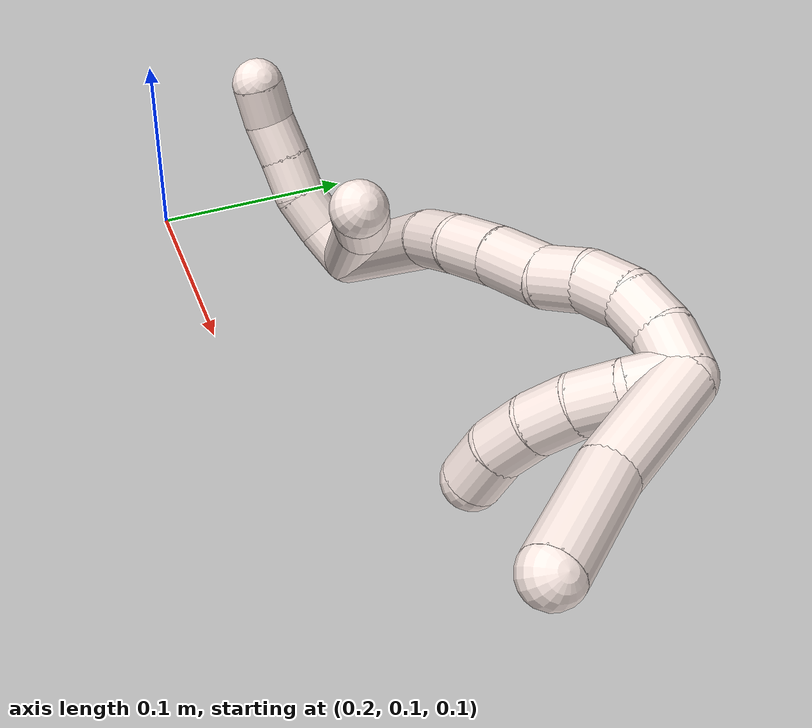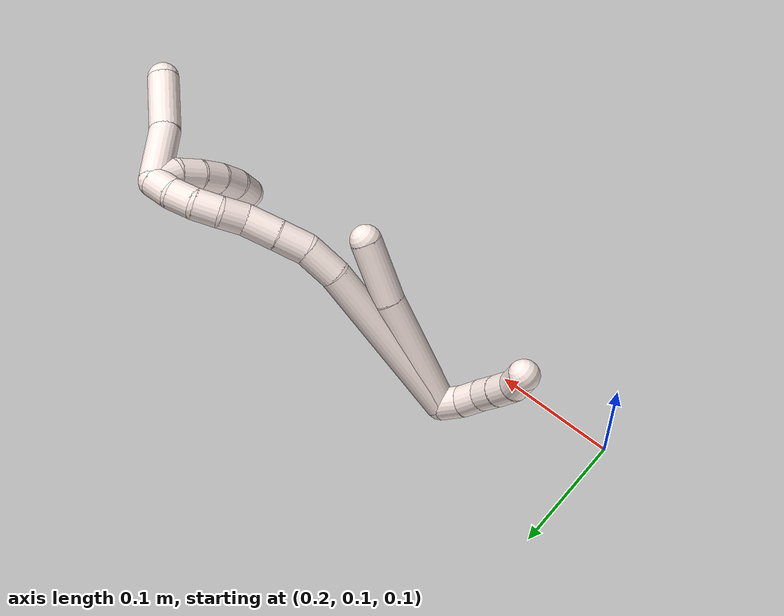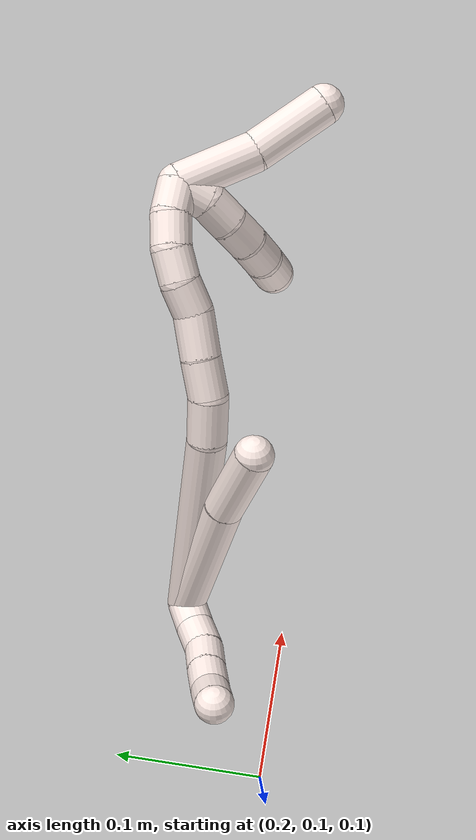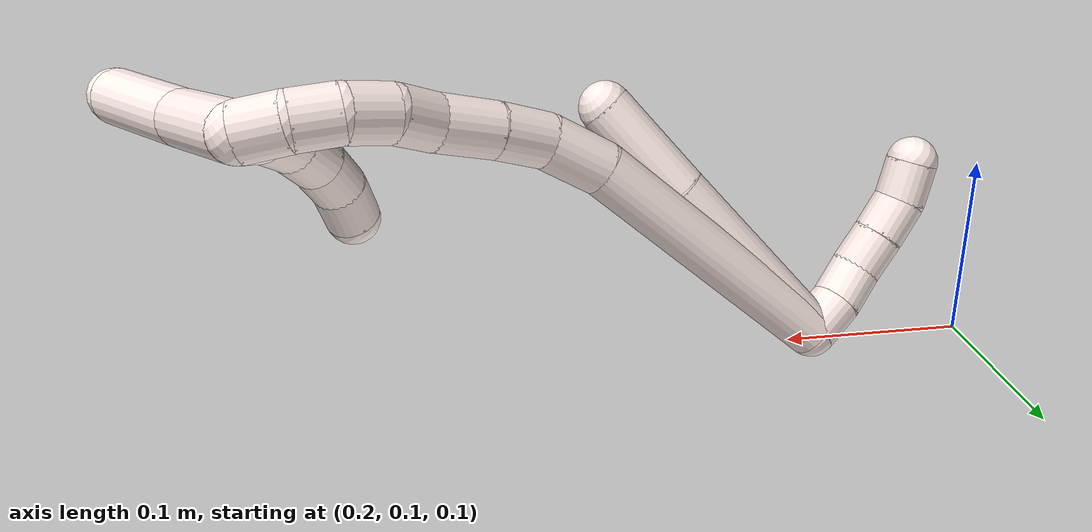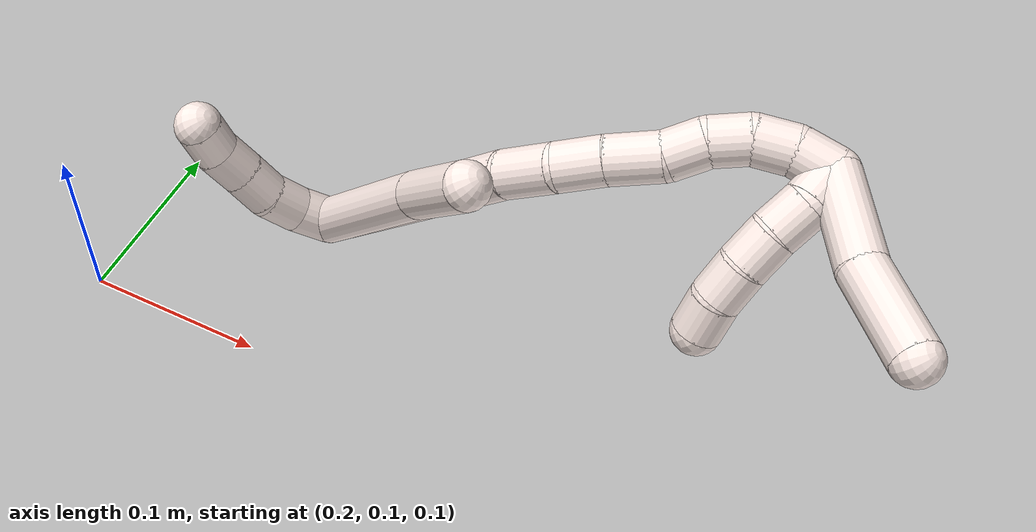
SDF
<sdf version="1.7">
 <world name="default">
  <model name="11">
   <static>0</static>
   <link name="11">
    <collision name="collision-cylinder-e_1_2_8">
     <pose>0.009742 -0.009693 0.04705 0.203165 0.200076 0.020462</pose>
     <geometry><cylinder><radius>0.0125</radius><length>0.098031</length></cylinder></geometry>
     <surface>
      <friction><ode><mu>1.16</mu><mu2>1.16</mu2><slip1>0</slip1><slip2>0</slip2></ode></friction>
      <contact><ode><kp>1e+06</kp><kd>1</kd><max_vel>0</max_vel><min_depth>0.001</min_depth></ode></contact>
     </surface>
    </collision>
    <visual name="visual-cylinder-e_1_2_8">
     <pose>0.009742 -0.009693 0.04705 0.203165 0.200076 0.020462</pose>
     <geometry><cylinder><radius>0.0125</radius><length>0.098031</length></cylinder></geometry>
     <material><ambient>1 0.933333 0.909804 1</ambient></material>
    </visual>
    <collision name="collision-cylinder-e_2_8_6">
     <pose>0.02611 -0.0265 0.118196 0.287123 0.257893 0.037484</pose>
     <geometry><cylinder><radius>0.0125</radius><length>0.051969</length></cylinder></geometry>
     <surface>
      <friction><ode><mu>1.16</mu><mu2>1.16</mu2><slip1>0</slip1><slip2>0</slip2></ode></friction>
      <contact><ode><kp>1e+06</kp><kd>1</kd><max_vel>0</max_vel><min_depth>0.001</min_depth></ode></contact>
     </surface>
    </collision>
    <visual name="visual-cylinder-e_2_8_6">
     <pose>0.02611 -0.0265 0.118196 0.287123 0.257893 0.037484</pose>
     <geometry><cylinder><radius>0.0125</radius><length>0.051969</length></cylinder></geometry>
     <material><ambient>1 0.933333 0.909804 1</ambient></material>
    </visual>
    <collision name="collision-cylinder-e_1_2_9">
     <pose>-0.004067 -0.009032 -0.001369 1.72126 -0.41887 -0.484694</pose>
     <geometry><cylinder><radius>0.0125</radius><length>0.02</length></cylinder></geometry>
     <surface>
      <friction><ode><mu>1.16</mu><mu2>1.16</mu2><slip1>0</slip1><slip2>0</slip2></ode></friction>
      <contact><ode><kp>1e+06</kp><kd>1</kd><max_vel>0</max_vel><min_depth>0.001</min_depth></ode></contact>
     </surface>
    </collision>
    <visual name="visual-cylinder-e_1_2_9">
     <pose>-0.004067 -0.009032 -0.001369 1.72126 -0.41887 -0.484694</pose>
     <geometry><cylinder><radius>0.0125</radius><length>0.02</length></cylinder></geometry>
     <material><ambient>1 0.933333 0.909804 1</ambient></material>
    </visual>
    <collision name="collision-cylinder-e_2_9_10">
     <pose>-0.012197 -0.02717 -0.001977 1.4873 -0.418387 -0.385694</pose>
     <geometry><cylinder><radius>0.0125</radius><length>0.02</length></cylinder></geometry>
     <surface>
      <friction><ode><mu>1.16</mu><mu2>1.16</mu2><slip1>0</slip1><slip2>0</slip2></ode></friction>
      <contact><ode><kp>1e+06</kp><kd>1</kd><max_vel>0</max_vel><min_depth>0.001</min_depth></ode></contact>
     </surface>
    </collision>
    <visual name="visual-cylinder-e_2_9_10">
     <pose>-0.012197 -0.02717 -0.001977 1.4873 -0.418387 -0.385694</pose>
     <geometry><cylinder><radius>0.0125</radius><length>0.02</length></cylinder></geometry>
     <material><ambient>1 0.933333 0.909804 1</ambient></material>
    </visual>
    <collision name="collision-cylinder-e_3_10_11">
     <pose>-0.022056 -0.044187 0.00074 1.32856 -0.618185 -0.490013</pose>
     <geometry><cylinder><radius>0.0125</radius><length>0.02</length></cylinder></geometry>
     <surface>
      <friction><ode><mu>1.16</mu><mu2>1.16</mu2><slip1>0</slip1><slip2>0</slip2></ode></friction>
      <contact><ode><kp>1e+06</kp><kd>1</kd><max_vel>0</max_vel><min_depth>0.001</min_depth></ode></contact>
     </surface>
    </collision>
    <visual name="visual-cylinder-e_3_10_11">
     <pose>-0.022056 -0.044187 0.00074 1.32856 -0.618185 -0.490013</pose>
     <geometry><cylinder><radius>0.0125</radius><length>0.02</length></cylinder></geometry>
     <material><ambient>1 0.933333 0.909804 1</ambient></material>
    </visual>
    <collision name="collision-cylinder-e_4_11_12">
     <pose>-0.033293 -0.060222 0.004794 1.31797 -0.575383 -0.450558</pose>
     <geometry><cylinder><radius>0.0125</radius><length>0.02</length></cylinder></geometry>
     <surface>
      <friction><ode><mu>1.16</mu><mu2>1.16</mu2><slip1>0</slip1><slip2>0</slip2></ode></friction>
      <contact><ode><kp>1e+06</kp><kd>1</kd><max_vel>0</max_vel><min_depth>0.001</min_depth></ode></contact>
     </surface>
    </collision>
    <visual name="visual-cylinder-e_4_11_12">
     <pose>-0.033293 -0.060222 0.004794 1.31797 -0.575383 -0.450558</pose>
     <geometry><cylinder><radius>0.0125</radius><length>0.02</length></cylinder></geometry>
     <material><ambient>1 0.933333 0.909804 1</ambient></material>
    </visual>
    <collision name="collision-cylinder-e_5_12_5">
     <pose>-0.043403 -0.075616 0.011926 0.965232 -0.485723 -0.25817</pose>
     <geometry><cylinder><radius>0.0125</radius><length>0.02</length></cylinder></geometry>
     <surface>
      <friction><ode><mu>1.16</mu><mu2>1.16</mu2><slip1>0</slip1><slip2>0</slip2></ode></friction>
      <contact><ode><kp>1e+06</kp><kd>1</kd><max_vel>0</max_vel><min_depth>0.001</min_depth></ode></contact>
     </surface>
    </collision>
    <visual name="visual-cylinder-e_5_12_5">
     <pose>-0.043403 -0.075616 0.011926 0.965232 -0.485723 -0.25817</pose>
     <geometry><cylinder><radius>0.0125</radius><length>0.02</length></cylinder></geometry>
     <material><ambient>1 0.933333 0.909804 1</ambient></material>
    </visual>
    <collision name="collision-cylinder-e_1_2_13">
     <pose>0.012518 0.000253 0.06797 -0.003716 0.182127 -0.000339</pose>
     <geometry><cylinder><radius>0.0125</radius><length>0.138227</length></cylinder></geometry>
     <surface>
      <friction><ode><mu>1.16</mu><mu2>1.16</mu2><slip1>0</slip1><slip2>0</slip2></ode></friction>
      <contact><ode><kp>1e+06</kp><kd>1</kd><max_vel>0</max_vel><min_depth>0.001</min_depth></ode></contact>
     </surface>
    </collision>
    <visual name="visual-cylinder-e_1_2_13">
     <pose>0.012518 0.000253 0.06797 -0.003716 0.182127 -0.000339</pose>
     <geometry><cylinder><radius>0.0125</radius><length>0.138227</length></cylinder></geometry>
     <material><ambient>1 0.933333 0.909804 1</ambient></material>
    </visual>
    <collision name="collision-cylinder-e_2_13_14">
     <pose>0.028675 0.003199 0.149867 -0.191078 0.251137 -0.024193</pose>
     <geometry><cylinder><radius>0.0125</radius><length>0.02929</length></cylinder></geometry>
     <surface>
      <friction><ode><mu>1.16</mu><mu2>1.16</mu2><slip1>0</slip1><slip2>0</slip2></ode></friction>
      <contact><ode><kp>1e+06</kp><kd>1</kd><max_vel>0</max_vel><min_depth>0.001</min_depth></ode></contact>
     </surface>
    </collision>
    <visual name="visual-cylinder-e_2_13_14">
     <pose>0.028675 0.003199 0.149867 -0.191078 0.251137 -0.024193</pose>
     <geometry><cylinder><radius>0.0125</radius><length>0.02929</length></cylinder></geometry>
     <material><ambient>1 0.933333 0.909804 1</ambient></material>
    </visual>
    <collision name="collision-cylinder-e_3_14_15">
     <pose>0.03473 0.011528 0.174505 -0.484298 0.197011 -0.048809</pose>
     <geometry><cylinder><radius>0.0125</radius><length>0.024681</length></cylinder></geometry>
     <surface>
      <friction><ode><mu>1.16</mu><mu2>1.16</mu2><slip1>0</slip1><slip2>0</slip2></ode></friction>
      <contact><ode><kp>1e+06</kp><kd>1</kd><max_vel>0</max_vel><min_depth>0.001</min_depth></ode></contact>
     </surface>
    </collision>
    <visual name="visual-cylinder-e_3_14_15">
     <pose>0.03473 0.011528 0.174505 -0.484298 0.197011 -0.048809</pose>
     <geometry><cylinder><radius>0.0125</radius><length>0.024681</length></cylinder></geometry>
     <material><ambient>1 0.933333 0.909804 1</ambient></material>
    </visual>
    <collision name="collision-cylinder-e_4_15_16">
     <pose>0.040711 0.023933 0.196675 -0.533625 0.261697 -0.07191</pose>
     <geometry><cylinder><radius>0.0125</radius><length>0.02756</length></cylinder></geometry>
     <surface>
      <friction><ode><mu>1.16</mu><mu2>1.16</mu2><slip1>0</slip1><slip2>0</slip2></ode></friction>
      <contact><ode><kp>1e+06</kp><kd>1</kd><max_vel>0</max_vel><min_depth>0.001</min_depth></ode></contact>
     </surface>
    </collision>
    <visual name="visual-cylinder-e_4_15_16">
     <pose>0.040711 0.023933 0.196675 -0.533625 0.261697 -0.07191</pose>
     <geometry><cylinder><radius>0.0125</radius><length>0.02756</length></cylinder></geometry>
     <material><ambient>1 0.933333 0.909804 1</ambient></material>
    </visual>
    <collision name="collision-cylinder-e_5_16_17">
     <pose>0.044129 0.035985 0.21674 -0.550463 -0.014534 0.004104</pose>
     <geometry><cylinder><radius>0.0125</radius><length>0.020194</length></cylinder></geometry>
     <surface>
      <friction><ode><mu>1.16</mu><mu2>1.16</mu2><slip1>0</slip1><slip2>0</slip2></ode></friction>
      <contact><ode><kp>1e+06</kp><kd>1</kd><max_vel>0</max_vel><min_depth>0.001</min_depth></ode></contact>
     </surface>
    </collision>
    <visual name="visual-cylinder-e_5_16_17">
     <pose>0.044129 0.035985 0.21674 -0.550463 -0.014534 0.004104</pose>
     <geometry><cylinder><radius>0.0125</radius><length>0.020194</length></cylinder></geometry>
     <material><ambient>1 0.933333 0.909804 1</ambient></material>
    </visual>
    <collision name="collision-cylinder-e_6_17_18">
     <pose>0.046348 0.047351 0.232935 -0.675783 0.238538 -0.084164</pose>
     <geometry><cylinder><radius>0.0125</radius><length>0.020026</length></cylinder></geometry>
     <surface>
      <friction><ode><mu>1.16</mu><mu2>1.16</mu2><slip1>0</slip1><slip2>0</slip2></ode></friction>
      <contact><ode><kp>1e+06</kp><kd>1</kd><max_vel>0</max_vel><min_depth>0.001</min_depth></ode></contact>
     </surface>
    </collision>
    <visual name="visual-cylinder-e_6_17_18">
     <pose>0.046348 0.047351 0.232935 -0.675783 0.238538 -0.084164</pose>
     <geometry><cylinder><radius>0.0125</radius><length>0.020026</length></cylinder></geometry>
     <material><ambient>1 0.933333 0.909804 1</ambient></material>
    </visual>
    <collision name="collision-cylinder-e_7_18_19">
     <pose>0.053958 0.059326 0.246683 -0.76316 0.551692 -0.226186</pose>
     <geometry><cylinder><radius>0.0125</radius><length>0.020009</length></cylinder></geometry>
     <surface>
      <friction><ode><mu>1.16</mu><mu2>1.16</mu2><slip1>0</slip1><slip2>0</slip2></ode></friction>
      <contact><ode><kp>1e+06</kp><kd>1</kd><max_vel>0</max_vel><min_depth>0.001</min_depth></ode></contact>
     </surface>
    </collision>
    <visual name="visual-cylinder-e_7_18_19">
     <pose>0.053958 0.059326 0.246683 -0.76316 0.551692 -0.226186</pose>
     <geometry><cylinder><radius>0.0125</radius><length>0.020009</length></cylinder></geometry>
     <material><ambient>1 0.933333 0.909804 1</ambient></material>
    </visual>
    <collision name="collision-cylinder-e_8_19_1">
     <pose>0.06648 0.070065 0.257702 -0.784107 0.814452 -0.352968</pose>
     <geometry><cylinder><radius>0.0125</radius><length>0.020014</length></cylinder></geometry>
     <surface>
      <friction><ode><mu>1.16</mu><mu2>1.16</mu2><slip1>0</slip1><slip2>0</slip2></ode></friction>
      <contact><ode><kp>1e+06</kp><kd>1</kd><max_vel>0</max_vel><min_depth>0.001</min_depth></ode></contact>
     </surface>
    </collision>
    <visual name="visual-cylinder-e_8_19_1">
     <pose>0.06648 0.070065 0.257702 -0.784107 0.814452 -0.352968</pose>
     <geometry><cylinder><radius>0.0125</radius><length>0.020014</length></cylinder></geometry>
     <material><ambient>1 0.933333 0.909804 1</ambient></material>
    </visual>
    <collision name="collision-cylinder-e_1_1_20">
     <pose>0.079209 0.068384 0.257308 2.24855 0.576438 1.10889</pose>
     <geometry><cylinder><radius>0.0125</radius><length>0.02</length></cylinder></geometry>
     <surface>
      <friction><ode><mu>1.16</mu><mu2>1.16</mu2><slip1>0</slip1><slip2>0</slip2></ode></friction>
      <contact><ode><kp>1e+06</kp><kd>1</kd><max_vel>0</max_vel><min_depth>0.001</min_depth></ode></contact>
     </surface>
    </collision>
    <visual name="visual-cylinder-e_1_1_20">
     <pose>0.079209 0.068384 0.257308 2.24855 0.576438 1.10889</pose>
     <geometry><cylinder><radius>0.0125</radius><length>0.02</length></cylinder></geometry>
     <material><ambient>1 0.933333 0.909804 1</ambient></material>
    </visual>
    <collision name="collision-cylinder-e_2_20_21">
     <pose>0.08875 0.057067 0.244281 2.58956 0.42143 1.29356</pose>
     <geometry><cylinder><radius>0.0125</radius><length>0.02</length></cylinder></geometry>
     <surface>
      <friction><ode><mu>1.16</mu><mu2>1.16</mu2><slip1>0</slip1><slip2>0</slip2></ode></friction>
      <contact><ode><kp>1e+06</kp><kd>1</kd><max_vel>0</max_vel><min_depth>0.001</min_depth></ode></contact>
     </surface>
    </collision>
    <visual name="visual-cylinder-e_2_20_21">
     <pose>0.08875 0.057067 0.244281 2.58956 0.42143 1.29356</pose>
     <geometry><cylinder><radius>0.0125</radius><length>0.02</length></cylinder></geometry>
     <material><ambient>1 0.933333 0.909804 1</ambient></material>
    </visual>
    <collision name="collision-cylinder-e_3_21_22">
     <pose>0.097494 0.049043 0.228274 2.76689 0.484034 1.8318</pose>
     <geometry><cylinder><radius>0.0125</radius><length>0.02</length></cylinder></geometry>
     <surface>
      <friction><ode><mu>1.16</mu><mu2>1.16</mu2><slip1>0</slip1><slip2>0</slip2></ode></friction>
      <contact><ode><kp>1e+06</kp><kd>1</kd><max_vel>0</max_vel><min_depth>0.001</min_depth></ode></contact>
     </surface>
    </collision>
    <visual name="visual-cylinder-e_3_21_22">
     <pose>0.097494 0.049043 0.228274 2.76689 0.484034 1.8318</pose>
     <geometry><cylinder><radius>0.0125</radius><length>0.02</length></cylinder></geometry>
     <material><ambient>1 0.933333 0.909804 1</ambient></material>
    </visual>
    <collision name="collision-cylinder-e_4_22_23">
     <pose>0.106919 0.044203 0.211396 2.95856 0.497403 2.44807</pose>
     <geometry><cylinder><radius>0.0125</radius><length>0.02</length></cylinder></geometry>
     <surface>
      <friction><ode><mu>1.16</mu><mu2>1.16</mu2><slip1>0</slip1><slip2>0</slip2></ode></friction>
      <contact><ode><kp>1e+06</kp><kd>1</kd><max_vel>0</max_vel><min_depth>0.001</min_depth></ode></contact>
     </surface>
    </collision>
    <visual name="visual-cylinder-e_4_22_23">
     <pose>0.106919 0.044203 0.211396 2.95856 0.497403 2.44807</pose>
     <geometry><cylinder><radius>0.0125</radius><length>0.02</length></cylinder></geometry>
     <material><ambient>1 0.933333 0.909804 1</ambient></material>
    </visual>
    <collision name="collision-cylinder-e_5_23_4">
     <pose>0.116735 0.043378 0.194154 -3.05179 0.528662 -2.8126</pose>
     <geometry><cylinder><radius>0.0125</radius><length>0.02</length></cylinder></geometry>
     <surface>
      <friction><ode><mu>1.16</mu><mu2>1.16</mu2><slip1>0</slip1><slip2>0</slip2></ode></friction>
      <contact><ode><kp>1e+06</kp><kd>1</kd><max_vel>0</max_vel><min_depth>0.001</min_depth></ode></contact>
     </surface>
    </collision>
    <visual name="visual-cylinder-e_5_23_4">
     <pose>0.116735 0.043378 0.194154 -3.05179 0.528662 -2.8126</pose>
     <geometry><cylinder><radius>0.0125</radius><length>0.02</length></cylinder></geometry>
     <material><ambient>1 0.933333 0.909804 1</ambient></material>
    </visual>
    <collision name="collision-cylinder-e_1_1_24">
     <pose>0.097447 0.066846 0.266528 1.1142 1.20808 0.811964</pose>
     <geometry><cylinder><radius>0.0125</radius><length>0.050674</length></cylinder></geometry>
     <surface>
      <friction><ode><mu>1.16</mu><mu2>1.16</mu2><slip1>0</slip1><slip2>0</slip2></ode></friction>
      <contact><ode><kp>1e+06</kp><kd>1</kd><max_vel>0</max_vel><min_depth>0.001</min_depth></ode></contact>
     </surface>
    </collision>
    <visual name="visual-cylinder-e_1_1_24">
     <pose>0.097447 0.066846 0.266528 1.1142 1.20808 0.811964</pose>
     <geometry><cylinder><radius>0.0125</radius><length>0.050674</length></cylinder></geometry>
     <material><ambient>1 0.933333 0.909804 1</ambient></material>
    </visual>
    <collision name="collision-cylinder-e_2_24_3">
     <pose>0.143343 0.05275 0.279367 0.596533 1.12078 0.38115</pose>
     <geometry><cylinder><radius>0.0125</radius><length>0.049326</length></cylinder></geometry>
     <surface>
      <friction><ode><mu>1.16</mu><mu2>1.16</mu2><slip1>0</slip1><slip2>0</slip2></ode></friction>
      <contact><ode><kp>1e+06</kp><kd>1</kd><max_vel>0</max_vel><min_depth>0.001</min_depth></ode></contact>
     </surface>
    </collision>
    <visual name="visual-cylinder-e_2_24_3">
     <pose>0.143343 0.05275 0.279367 0.596533 1.12078 0.38115</pose>
     <geometry><cylinder><radius>0.0125</radius><length>0.049326</length></cylinder></geometry>
     <material><ambient>1 0.933333 0.909804 1</ambient></material>
    </visual>
    <collision name="collision-sphere-3">
     <pose>0.165551 0.046723 0.288242 0 -0 0</pose>
     <geometry><sphere><radius>0.0125</radius></sphere></geometry>
     <surface>
      <friction><ode><mu>1.16</mu><mu2>1.16</mu2><slip1>0</slip1><slip2>0</slip2></ode></friction>
      <contact><ode><kp>1e+06</kp><kd>1</kd><max_vel>0</max_vel><min_depth>0.001</min_depth></ode></contact>
     </surface>
    </collision>
    <visual name="visual-sphere-3">
     <pose>0.165551 0.046723 0.288242 0 -0 0</pose>
     <geometry><sphere><radius>0.0125</radius></sphere></geometry>
     <material><ambient>1 0.933333 0.909804 1</ambient></material>
    </visual>
    <collision name="collision-sphere-24">
     <pose>0.121136 0.058777 0.270492 0 -0 0</pose>
     <geometry><sphere><radius>0.0125</radius></sphere></geometry>
     <surface>
      <friction><ode><mu>1.16</mu><mu2>1.16</mu2><slip1>0</slip1><slip2>0</slip2></ode></friction>
      <contact><ode><kp>1e+06</kp><kd>1</kd><max_vel>0</max_vel><min_depth>0.001</min_depth></ode></contact>
     </surface>
    </collision>
    <visual name="visual-sphere-24">
     <pose>0.121136 0.058777 0.270492 0 -0 0</pose>
     <geometry><sphere><radius>0.0125</radius></sphere></geometry>
     <material><ambient>1 0.933333 0.909804 1</ambient></material>
    </visual>
    <collision name="collision-sphere-4">
     <pose>0.121778 0.044153 0.185554 0 -0 0</pose>
     <geometry><sphere><radius>0.0125</radius></sphere></geometry>
     <surface>
      <friction><ode><mu>1.16</mu><mu2>1.16</mu2><slip1>0</slip1><slip2>0</slip2></ode></friction>
      <contact><ode><kp>1e+06</kp><kd>1</kd><max_vel>0</max_vel><min_depth>0.001</min_depth></ode></contact>
     </surface>
    </collision>
    <visual name="visual-sphere-4">
     <pose>0.121778 0.044153 0.185554 0 -0 0</pose>
     <geometry><sphere><radius>0.0125</radius></sphere></geometry>
     <material><ambient>1 0.933333 0.909804 1</ambient></material>
    </visual>
    <collision name="collision-sphere-23">
     <pose>0.111691 0.042604 0.202754 0 -0 0</pose>
     <geometry><sphere><radius>0.0125</radius></sphere></geometry>
     <surface>
      <friction><ode><mu>1.16</mu><mu2>1.16</mu2><slip1>0</slip1><slip2>0</slip2></ode></friction>
      <contact><ode><kp>1e+06</kp><kd>1</kd><max_vel>0</max_vel><min_depth>0.001</min_depth></ode></contact>
     </surface>
    </collision>
    <visual name="visual-sphere-23">
     <pose>0.111691 0.042604 0.202754 0 -0 0</pose>
     <geometry><sphere><radius>0.0125</radius></sphere></geometry>
     <material><ambient>1 0.933333 0.909804 1</ambient></material>
    </visual>
    <collision name="collision-sphere-22">
     <pose>0.102148 0.045803 0.220037 0 -0 0</pose>
     <geometry><sphere><radius>0.0125</radius></sphere></geometry>
     <surface>
      <friction><ode><mu>1.16</mu><mu2>1.16</mu2><slip1>0</slip1><slip2>0</slip2></ode></friction>
      <contact><ode><kp>1e+06</kp><kd>1</kd><max_vel>0</max_vel><min_depth>0.001</min_depth></ode></contact>
     </surface>
    </collision>
    <visual name="visual-sphere-22">
     <pose>0.102148 0.045803 0.220037 0 -0 0</pose>
     <geometry><sphere><radius>0.0125</radius></sphere></geometry>
     <material><ambient>1 0.933333 0.909804 1</ambient></material>
    </visual>
    <collision name="collision-sphere-21">
     <pose>0.092841 0.052282 0.236511 0 -0 0</pose>
     <geometry><sphere><radius>0.0125</radius></sphere></geometry>
     <surface>
      <friction><ode><mu>1.16</mu><mu2>1.16</mu2><slip1>0</slip1><slip2>0</slip2></ode></friction>
      <contact><ode><kp>1e+06</kp><kd>1</kd><max_vel>0</max_vel><min_depth>0.001</min_depth></ode></contact>
     </surface>
    </collision>
    <visual name="visual-sphere-21">
     <pose>0.092841 0.052282 0.236511 0 -0 0</pose>
     <geometry><sphere><radius>0.0125</radius></sphere></geometry>
     <material><ambient>1 0.933333 0.909804 1</ambient></material>
    </visual>
    <collision name="collision-sphere-20">
     <pose>0.08466 0.061853 0.25205 0 -0 0</pose>
     <geometry><sphere><radius>0.0125</radius></sphere></geometry>
     <surface>
      <friction><ode><mu>1.16</mu><mu2>1.16</mu2><slip1>0</slip1><slip2>0</slip2></ode></friction>
      <contact><ode><kp>1e+06</kp><kd>1</kd><max_vel>0</max_vel><min_depth>0.001</min_depth></ode></contact>
     </surface>
    </collision>
    <visual name="visual-sphere-20">
     <pose>0.08466 0.061853 0.25205 0 -0 0</pose>
     <geometry><sphere><radius>0.0125</radius></sphere></geometry>
     <material><ambient>1 0.933333 0.909804 1</ambient></material>
    </visual>
    <collision name="collision-sphere-11">
     <pose>-0.027851 -0.052099 0.002695 0 -0 0</pose>
     <geometry><sphere><radius>0.0125</radius></sphere></geometry>
     <surface>
      <friction><ode><mu>1.16</mu><mu2>1.16</mu2><slip1>0</slip1><slip2>0</slip2></ode></friction>
      <contact><ode><kp>1e+06</kp><kd>1</kd><max_vel>0</max_vel><min_depth>0.001</min_depth></ode></contact>
     </surface>
    </collision>
    <visual name="visual-sphere-11">
     <pose>-0.027851 -0.052099 0.002695 0 -0 0</pose>
     <geometry><sphere><radius>0.0125</radius></sphere></geometry>
     <material><ambient>1 0.933333 0.909804 1</ambient></material>
    </visual>
    <collision name="collision-sphere-10">
     <pose>-0.01626 -0.036276 -0.001215 0 -0 0</pose>
     <geometry><sphere><radius>0.0125</radius></sphere></geometry>
     <surface>
      <friction><ode><mu>1.16</mu><mu2>1.16</mu2><slip1>0</slip1><slip2>0</slip2></ode></friction>
      <contact><ode><kp>1e+06</kp><kd>1</kd><max_vel>0</max_vel><min_depth>0.001</min_depth></ode></contact>
     </surface>
    </collision>
    <visual name="visual-sphere-10">
     <pose>-0.01626 -0.036276 -0.001215 0 -0 0</pose>
     <geometry><sphere><radius>0.0125</radius></sphere></geometry>
     <material><ambient>1 0.933333 0.909804 1</ambient></material>
    </visual>
    <collision name="collision-sphere-6">
     <pose>0.032737 -0.033616 0.142293 0 -0 0</pose>
     <geometry><sphere><radius>0.0125</radius></sphere></geometry>
     <surface>
      <friction><ode><mu>1.16</mu><mu2>1.16</mu2><slip1>0</slip1><slip2>0</slip2></ode></friction>
      <contact><ode><kp>1e+06</kp><kd>1</kd><max_vel>0</max_vel><min_depth>0.001</min_depth></ode></contact>
     </surface>
    </collision>
    <visual name="visual-sphere-6">
     <pose>0.032737 -0.033616 0.142293 0 -0 0</pose>
     <geometry><sphere><radius>0.0125</radius></sphere></geometry>
     <material><ambient>1 0.933333 0.909804 1</ambient></material>
    </visual>
    <collision name="collision-sphere-9">
     <pose>-0.008135 -0.018065 -0.002739 0 -0 0</pose>
     <geometry><sphere><radius>0.0125</radius></sphere></geometry>
     <surface>
      <friction><ode><mu>1.16</mu><mu2>1.16</mu2><slip1>0</slip1><slip2>0</slip2></ode></friction>
      <contact><ode><kp>1e+06</kp><kd>1</kd><max_vel>0</max_vel><min_depth>0.001</min_depth></ode></contact>
     </surface>
    </collision>
    <visual name="visual-sphere-9">
     <pose>-0.008135 -0.018065 -0.002739 0 -0 0</pose>
     <geometry><sphere><radius>0.0125</radius></sphere></geometry>
     <material><ambient>1 0.933333 0.909804 1</ambient></material>
    </visual>
    <collision name="collision-sphere-2">
     <geometry><sphere><radius>0.0125</radius></sphere></geometry>
     <surface>
      <friction><ode><mu>1.16</mu><mu2>1.16</mu2><slip1>0</slip1><slip2>0</slip2></ode></friction>
      <contact><ode><kp>1e+06</kp><kd>1</kd><max_vel>0</max_vel><min_depth>0.001</min_depth></ode></contact>
     </surface>
    </collision>
    <visual name="visual-sphere-2">
     <geometry><sphere><radius>0.0125</radius></sphere></geometry>
     <material><ambient>1 0.933333 0.909804 1</ambient></material>
    </visual>
    <collision name="collision-sphere-19">
     <pose>0.059201 0.065215 0.25284 0 -0 0</pose>
     <geometry><sphere><radius>0.0125</radius></sphere></geometry>
     <surface>
      <friction><ode><mu>1.16</mu><mu2>1.16</mu2><slip1>0</slip1><slip2>0</slip2></ode></friction>
      <contact><ode><kp>1e+06</kp><kd>1</kd><max_vel>0</max_vel><min_depth>0.001</min_depth></ode></contact>
     </surface>
    </collision>
    <visual name="visual-sphere-19">
     <pose>0.059201 0.065215 0.25284 0 -0 0</pose>
     <geometry><sphere><radius>0.0125</radius></sphere></geometry>
     <material><ambient>1 0.933333 0.909804 1</ambient></material>
    </visual>
    <collision name="collision-sphere-8">
     <pose>0.019483 -0.019385 0.0941 0 -0 0</pose>
     <geometry><sphere><radius>0.0125</radius></sphere></geometry>
     <surface>
      <friction><ode><mu>1.16</mu><mu2>1.16</mu2><slip1>0</slip1><slip2>0</slip2></ode></friction>
      <contact><ode><kp>1e+06</kp><kd>1</kd><max_vel>0</max_vel><min_depth>0.001</min_depth></ode></contact>
     </surface>
    </collision>
    <visual name="visual-sphere-8">
     <pose>0.019483 -0.019385 0.0941 0 -0 0</pose>
     <geometry><sphere><radius>0.0125</radius></sphere></geometry>
     <material><ambient>1 0.933333 0.909804 1</ambient></material>
    </visual>
    <collision name="collision-sphere-12">
     <pose>-0.038735 -0.068345 0.006892 0 -0 0</pose>
     <geometry><sphere><radius>0.0125</radius></sphere></geometry>
     <surface>
      <friction><ode><mu>1.16</mu><mu2>1.16</mu2><slip1>0</slip1><slip2>0</slip2></ode></friction>
      <contact><ode><kp>1e+06</kp><kd>1</kd><max_vel>0</max_vel><min_depth>0.001</min_depth></ode></contact>
     </surface>
    </collision>
    <visual name="visual-sphere-12">
     <pose>-0.038735 -0.068345 0.006892 0 -0 0</pose>
     <geometry><sphere><radius>0.0125</radius></sphere></geometry>
     <material><ambient>1 0.933333 0.909804 1</ambient></material>
    </visual>
    <collision name="collision-sphere-5">
     <pose>-0.048072 -0.082887 0.01696 0 -0 0</pose>
     <geometry><sphere><radius>0.0125</radius></sphere></geometry>
     <surface>
      <friction><ode><mu>1.16</mu><mu2>1.16</mu2><slip1>0</slip1><slip2>0</slip2></ode></friction>
      <contact><ode><kp>1e+06</kp><kd>1</kd><max_vel>0</max_vel><min_depth>0.001</min_depth></ode></contact>
     </surface>
    </collision>
    <visual name="visual-sphere-5">
     <pose>-0.048072 -0.082887 0.01696 0 -0 0</pose>
     <geometry><sphere><radius>0.0125</radius></sphere></geometry>
     <material><ambient>1 0.933333 0.909804 1</ambient></material>
    </visual>
    <collision name="collision-sphere-13">
     <pose>0.025036 0.000505 0.135939 0 -0 0</pose>
     <geometry><sphere><radius>0.0125</radius></sphere></geometry>
     <surface>
      <friction><ode><mu>1.16</mu><mu2>1.16</mu2><slip1>0</slip1><slip2>0</slip2></ode></friction>
      <contact><ode><kp>1e+06</kp><kd>1</kd><max_vel>0</max_vel><min_depth>0.001</min_depth></ode></contact>
     </surface>
    </collision>
    <visual name="visual-sphere-13">
     <pose>0.025036 0.000505 0.135939 0 -0 0</pose>
     <geometry><sphere><radius>0.0125</radius></sphere></geometry>
     <material><ambient>1 0.933333 0.909804 1</ambient></material>
    </visual>
    <collision name="collision-sphere-14">
     <pose>0.032315 0.005893 0.163794 0 -0 0</pose>
     <geometry><sphere><radius>0.0125</radius></sphere></geometry>
     <surface>
      <friction><ode><mu>1.16</mu><mu2>1.16</mu2><slip1>0</slip1><slip2>0</slip2></ode></friction>
      <contact><ode><kp>1e+06</kp><kd>1</kd><max_vel>0</max_vel><min_depth>0.001</min_depth></ode></contact>
     </surface>
    </collision>
    <visual name="visual-sphere-14">
     <pose>0.032315 0.005893 0.163794 0 -0 0</pose>
     <geometry><sphere><radius>0.0125</radius></sphere></geometry>
     <material><ambient>1 0.933333 0.909804 1</ambient></material>
    </visual>
    <collision name="collision-sphere-15">
     <pose>0.037146 0.017162 0.185215 0 -0 0</pose>
     <geometry><sphere><radius>0.0125</radius></sphere></geometry>
     <surface>
      <friction><ode><mu>1.16</mu><mu2>1.16</mu2><slip1>0</slip1><slip2>0</slip2></ode></friction>
      <contact><ode><kp>1e+06</kp><kd>1</kd><max_vel>0</max_vel><min_depth>0.001</min_depth></ode></contact>
     </surface>
    </collision>
    <visual name="visual-sphere-15">
     <pose>0.037146 0.017162 0.185215 0 -0 0</pose>
     <geometry><sphere><radius>0.0125</radius></sphere></geometry>
     <material><ambient>1 0.933333 0.909804 1</ambient></material>
    </visual>
    <collision name="collision-sphere-16">
     <pose>0.044276 0.030704 0.208135 0 -0 0</pose>
     <geometry><sphere><radius>0.0125</radius></sphere></geometry>
     <surface>
      <friction><ode><mu>1.16</mu><mu2>1.16</mu2><slip1>0</slip1><slip2>0</slip2></ode></friction>
      <contact><ode><kp>1e+06</kp><kd>1</kd><max_vel>0</max_vel><min_depth>0.001</min_depth></ode></contact>
     </surface>
    </collision>
    <visual name="visual-sphere-16">
     <pose>0.044276 0.030704 0.208135 0 -0 0</pose>
     <geometry><sphere><radius>0.0125</radius></sphere></geometry>
     <material><ambient>1 0.933333 0.909804 1</ambient></material>
    </visual>
    <collision name="collision-sphere-17">
     <pose>0.043982 0.041266 0.225344 0 -0 0</pose>
     <geometry><sphere><radius>0.0125</radius></sphere></geometry>
     <surface>
      <friction><ode><mu>1.16</mu><mu2>1.16</mu2><slip1>0</slip1><slip2>0</slip2></ode></friction>
      <contact><ode><kp>1e+06</kp><kd>1</kd><max_vel>0</max_vel><min_depth>0.001</min_depth></ode></contact>
     </surface>
    </collision>
    <visual name="visual-sphere-17">
     <pose>0.043982 0.041266 0.225344 0 -0 0</pose>
     <geometry><sphere><radius>0.0125</radius></sphere></geometry>
     <material><ambient>1 0.933333 0.909804 1</ambient></material>
    </visual>
    <collision name="collision-sphere-18">
     <pose>0.048714 0.053437 0.240526 0 -0 0</pose>
     <geometry><sphere><radius>0.0125</radius></sphere></geometry>
     <surface>
      <friction><ode><mu>1.16</mu><mu2>1.16</mu2><slip1>0</slip1><slip2>0</slip2></ode></friction>
      <contact><ode><kp>1e+06</kp><kd>1</kd><max_vel>0</max_vel><min_depth>0.001</min_depth></ode></contact>
     </surface>
    </collision>
    <visual name="visual-sphere-18">
     <pose>0.048714 0.053437 0.240526 0 -0 0</pose>
     <geometry><sphere><radius>0.0125</radius></sphere></geometry>
     <material><ambient>1 0.933333 0.909804 1</ambient></material>
    </visual>
    <collision name="collision-sphere-1">
     <pose>0.073759 0.074915 0.262565 0 -0 0</pose>
     <geometry><sphere><radius>0.0125</radius></sphere></geometry>
     <surface>
      <friction><ode><mu>1.16</mu><mu2>1.16</mu2><slip1>0</slip1><slip2>0</slip2></ode></friction>
      <contact><ode><kp>1e+06</kp><kd>1</kd><max_vel>0</max_vel><min_depth>0.001</min_depth></ode></contact>
     </surface>
    </collision>
    <visual name="visual-sphere-1">
     <pose>0.073759 0.074915 0.262565 0 -0 0</pose>
     <geometry><sphere><radius>0.0125</radius></sphere></geometry>
     <material><ambient>1 0.933333 0.909804 1</ambient></material>
    </visual>
    <inertial>
     <pose>0.040775 0.013221 0.138238 0 -0 0</pose>
     <mass>0.75</mass>
     <inertia><ixx>0.000364</ixx><ixy>0</ixy><ixz>0</ixz><iyy>0.000361</iyy><iyz>0</iyz><izz>-3e-05</izz></inertia>
    </inertial>
   </link>
   <pose>0.313564 0.168548 0.142692 -0.60326 0.432639 -0.816008</pose>
  </model>
 </world>
</sdf>
